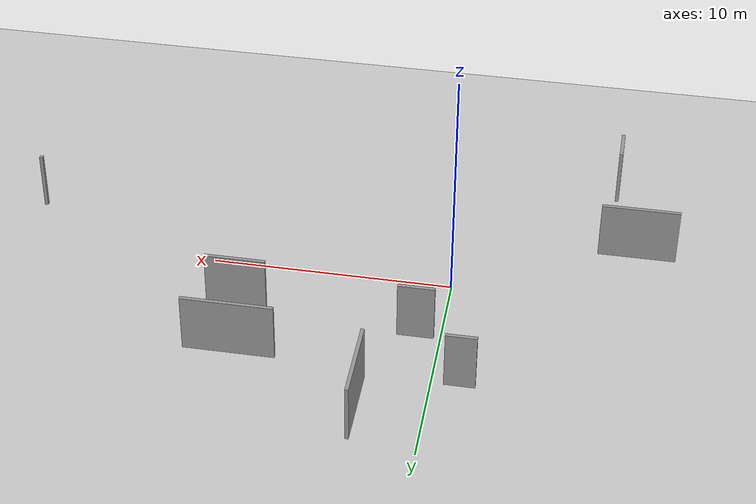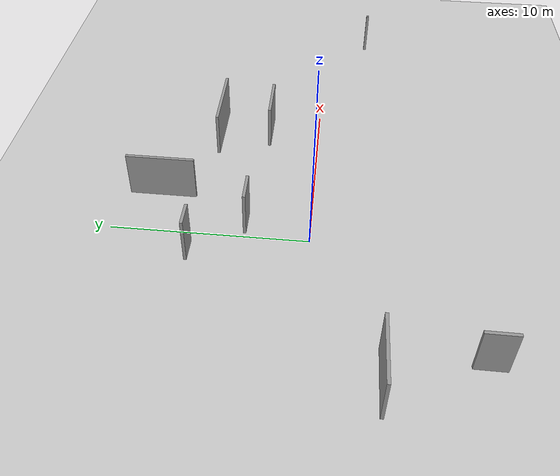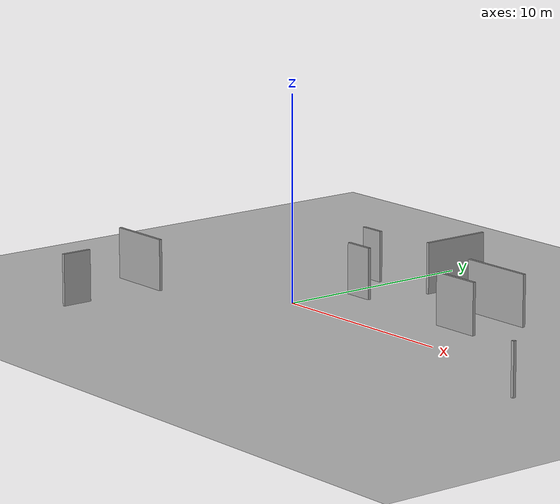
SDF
<sdf version="1.6">
 <world name="default">
  <model name="ground_plane">
   <static>1</static>
   <link name="link">
    <collision name="collision">
     <geometry><plane><normal>0 0 1</normal><size>100 100</size></plane></geometry>
     <surface>
      <contact><collide_bitmask>65535</collide_bitmask></contact>
      <friction><ode><mu>100</mu><mu2>50</mu2></ode></friction>
     </surface>
    </collision>
    <visual name="visual">
     <cast_shadows>0</cast_shadows>
     <geometry><plane><normal>0 0 1</normal><size>100 100</size></plane></geometry>
     <material>
      <script><uri>file://media/materials/scripts/gazebo.material</uri><name>Gazebo/Grey</name></script>
     </material>
    </visual>
   </link>
  </model>
  <model name="Untitled">
   <pose>4.60732 0.47154 0 0 -0 0</pose>
   <link name="Wall_0">
    <collision name="Wall_0_Collision">
     <geometry><box><size>2.5 0.15 2.5</size></box></geometry>
     <pose>0 0 1.25 0 -0 0</pose>
    </collision>
    <visual name="Wall_0_Visual">
     <pose>0 0 1.25 0 -0 0</pose>
     <geometry><box><size>2.5 0.15 2.5</size></box></geometry>
     <material>
      <script><uri>file://media/materials/scripts/gazebo.material</uri><name>Gazebo/Grey</name></script>
      <ambient>1 1 1 1</ambient>
     </material>
     <meta><layer>0</layer></meta>
    </visual>
    <pose>3.85241 2.25124 0 0 -0 0</pose>
   </link>
   <link name="Wall_10">
    <collision name="Wall_10_Collision">
     <geometry><box><size>3.25 0.15 2.5</size></box></geometry>
     <pose>0 0 1.25 0 -0 0</pose>
    </collision>
    <visual name="Wall_10_Visual">
     <pose>0 0 1.25 0 -0 0</pose>
     <geometry><box><size>3.25 0.15 2.5</size></box></geometry>
     <material>
      <script><uri>file://media/materials/scripts/gazebo.material</uri><name>Gazebo/Grey</name></script>
      <ambient>1 1 1 1</ambient>
     </material>
     <meta><layer>0</layer></meta>
    </visual>
    <pose>-12.0093 -3.8586 0 0 -0 0</pose>
   </link>
   <link name="Wall_14">
    <collision name="Wall_14_Collision">
     <geometry><box><size>1.5 0.15 2.5</size></box></geometry>
     <pose>0 0 1.25 0 -0 0</pose>
    </collision>
    <visual name="Wall_14_Visual">
     <pose>0 0 1.25 0 -0 0</pose>
     <geometry><box><size>1.5 0.15 2.5</size></box></geometry>
     <material>
      <script><uri>file://media/materials/scripts/gazebo.material</uri><name>Gazebo/Grey</name></script>
      <ambient>1 1 1 1</ambient>
     </material>
     <meta><layer>0</layer></meta>
    </visual>
    <pose>-10.9224 -8.37328 0 0 -0 -1.5708</pose>
   </link>
   <link name="Wall_2">
    <collision name="Wall_2_Collision">
     <geometry><box><size>3.75 0.15 2.5</size></box></geometry>
     <pose>0 0 1.25 0 -0 0</pose>
    </collision>
    <visual name="Wall_2_Visual">
     <pose>0 0 1.25 0 -0 0</pose>
     <geometry><box><size>3.75 0.15 2.5</size></box></geometry>
     <material>
      <script><uri>file://media/materials/scripts/gazebo.material</uri><name>Gazebo/Grey</name></script>
      <ambient>1 1 1 1</ambient>
     </material>
     <meta><layer>0</layer></meta>
    </visual>
    <pose>3.55313 5.02355 0 0 -0 0</pose>
   </link>
   <link name="Wall_4">
    <collision name="Wall_4_Collision">
     <geometry><box><size>3.5 0.15 2.5</size></box></geometry>
     <pose>0 0 1.25 0 -0 0</pose>
    </collision>
    <visual name="Wall_4_Visual">
     <pose>0 0 1.25 0 -0 0</pose>
     <geometry><box><size>3.5 0.15 2.5</size></box></geometry>
     <material>
      <script><uri>file://media/materials/scripts/gazebo.material</uri><name>Gazebo/Grey</name></script>
      <ambient>1 1 1 1</ambient>
     </material>
     <meta><layer>0</layer></meta>
    </visual>
    <pose>-1.94777 7.37328 0 0 -0 -1.5708</pose>
   </link>
   <link name="Wall_8">
    <collision name="Wall_8_Collision">
     <geometry><box><size>0.15 0.15 2.5</size></box></geometry>
     <pose>0 0 1.25 0 -0 0</pose>
    </collision>
    <visual name="Wall_8_Visual">
     <pose>0 0 1.25 0 -0 0</pose>
     <geometry><box><size>0.15 0.15 2.5</size></box></geometry>
     <material>
      <script><uri>file://media/materials/scripts/gazebo.material</uri><name>Gazebo/Grey</name></script>
      <ambient>1 1 1 1</ambient>
     </material>
     <meta><layer>0</layer></meta>
    </visual>
    <pose>13.5593 -3.10766 0 0 -0 0</pose>
   </link>
   <static>1</static>
  </model>
  <model name="Untitled_0">
   <pose>0.007452 4.55646 0 0 -0 0</pose>
   <link name="Wall_0">
    <collision name="Wall_0_Collision">
     <geometry><box><size>1.5 0.15 2.5</size></box></geometry>
     <pose>0 0 1.25 0 -0 0</pose>
    </collision>
    <visual name="Wall_0_Visual">
     <pose>0 0 1.25 0 -0 0</pose>
     <geometry><box><size>1.5 0.15 2.5</size></box></geometry>
     <material>
      <script><uri>file://media/materials/scripts/gazebo.material</uri><name>Gazebo/Grey</name></script>
      <ambient>1 1 1 1</ambient>
     </material>
     <meta><layer>0</layer></meta>
    </visual>
    <pose>1.00518 -1.31112 0 0 -0 0</pose>
   </link>
   <link name="Wall_2">
    <collision name="Wall_2_Collision">
     <geometry><box><size>1.25 0.15 2.5</size></box></geometry>
     <pose>0 0 1.25 0 -0 0</pose>
    </collision>
    <visual name="Wall_2_Visual">
     <pose>0 0 1.25 0 -0 0</pose>
     <geometry><box><size>1.25 0.15 2.5</size></box></geometry>
     <material>
      <script><uri>file://media/materials/scripts/gazebo.material</uri><name>Gazebo/Grey</name></script>
      <ambient>1 1 1 1</ambient>
     </material>
     <meta><layer>0</layer></meta>
    </visual>
    <pose>-1.13018 1.31112 0 0 -0 0</pose>
   </link>
   <static>1</static>
  </model>
 </world>
</sdf>
